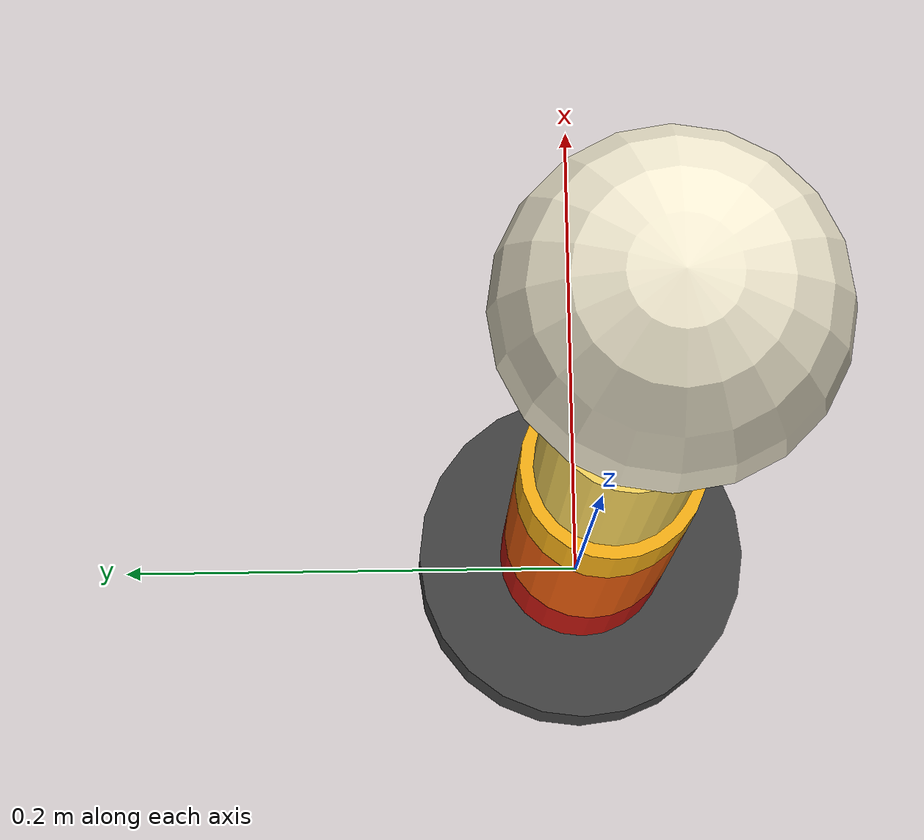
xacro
<?xml version="1.0"?>
<robot name="chicken_neck">
  <link name="base_link">
    <visual>
      <origin xyz="0 0 0.02" rpy="0 0 0"/>
      <geometry>
        <cylinder radius="0.07" length="0.04"/>
      </geometry>
      <material name="base_gray">
        <color rgba="0.25 0.25 0.25 1.0"/>
      </material>
    </visual>
  </link>

  <link name="lower_yaw_link">
    <visual>
      <origin xyz="0 0 0.03" rpy="0 0 0"/>
      <geometry>
        <cylinder radius="0.035" length="0.06"/>
      </geometry>
      <material name="neck_red">
        <color rgba="0.75 0.08 0.05 1.0"/>
      </material>
    </visual>
  </link>

  <joint name="lower_yaw" type="revolute">
    <parent link="base_link"/>
    <child link="lower_yaw_link"/>
    <origin xyz="0 0 0.04" rpy="0 0 0"/>
    <axis xyz="0 0 1"/>
    <limit lower="-1.5708" upper="1.5708" effort="1.0" velocity="1.0"/>
  </joint>

  <link name="lower_pitch_link">
    <visual>
      <origin xyz="0 0 0.06" rpy="0 0 0"/>
      <geometry>
        <cylinder radius="0.035" length="0.12"/>
      </geometry>
      <material name="neck_orange">
        <color rgba="0.9 0.35 0.04 1.0"/>
      </material>
    </visual>
  </link>

  <joint name="lower_pitch" type="revolute">
    <parent link="lower_yaw_link"/>
    <child link="lower_pitch_link"/>
    <origin xyz="0 0 0.06" rpy="0 0 0"/>
    <axis xyz="0 1 0"/>
    <limit lower="-0.7854" upper="0.7854" effort="1.0" velocity="1.0"/>
  </joint>

  <link name="upper_yaw_link">
    <visual>
      <origin xyz="0 0 0.025" rpy="0 0 0"/>
      <geometry>
        <cylinder radius="0.035" length="0.05"/>
      </geometry>
      <material name="neck_yellow">
        <color rgba="0.95 0.68 0.08 1.0"/>
      </material>
    </visual>
  </link>

  <joint name="upper_yaw" type="revolute">
    <parent link="lower_pitch_link"/>
    <child link="upper_yaw_link"/>
    <origin xyz="0 0 0.12" rpy="0 0 0"/>
    <axis xyz="0 0 1"/>
    <limit lower="-1.5708" upper="1.5708" effort="1.0" velocity="1.0"/>
  </joint>

  <link name="upper_pitch_link">
    <visual>
      <origin xyz="0 0 0.06" rpy="0 0 0"/>
      <geometry>
        <cylinder radius="0.03" length="0.12"/>
      </geometry>
      <material name="neck_light">
        <color rgba="0.95 0.82 0.35 1.0"/>
      </material>
    </visual>
  </link>

  <joint name="upper_pitch" type="revolute">
    <parent link="upper_yaw_link"/>
    <child link="upper_pitch_link"/>
    <origin xyz="0 0 0.05" rpy="0 0 0"/>
    <axis xyz="0 1 0"/>
    <limit lower="-0.7854" upper="0.7854" effort="1.0" velocity="1.0"/>
  </joint>

  <link name="head_link">
    <visual>
      <origin xyz="0 0 0.153" rpy="0 0 0"/>
      <geometry>
        <sphere radius="0.055"/>
      </geometry>
      <material name="head_white">
        <color rgba="0.95 0.92 0.82 1.0"/>
      </material>
    </visual>
  </link>

  <joint name="head_fixed" type="fixed">
    <parent link="upper_pitch_link"/>
    <child link="head_link"/>
    <origin xyz="0 0 0.12" rpy="0 0 0"/>
  </joint>
</robot>
